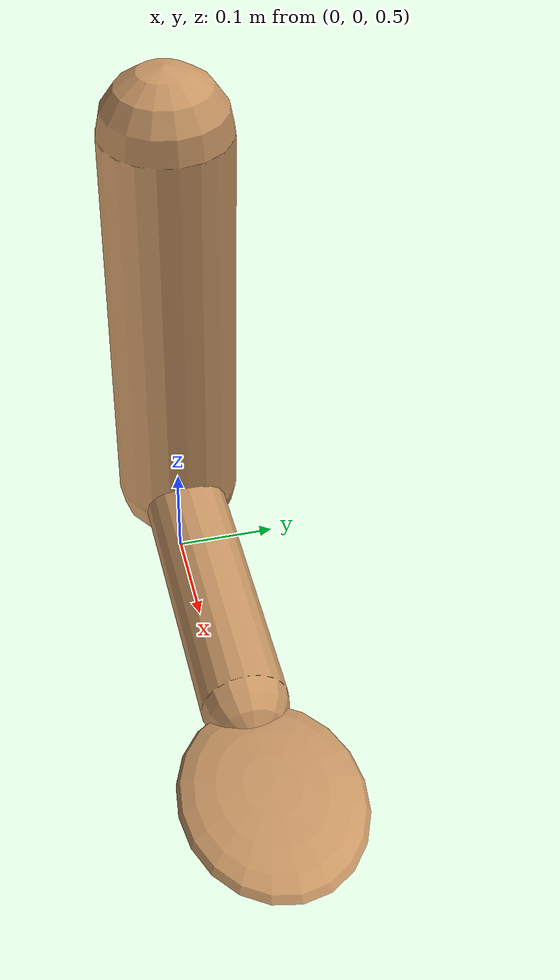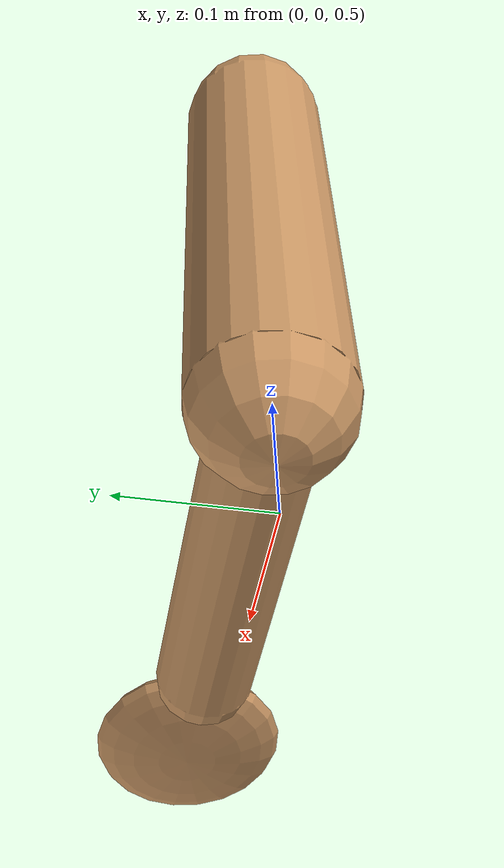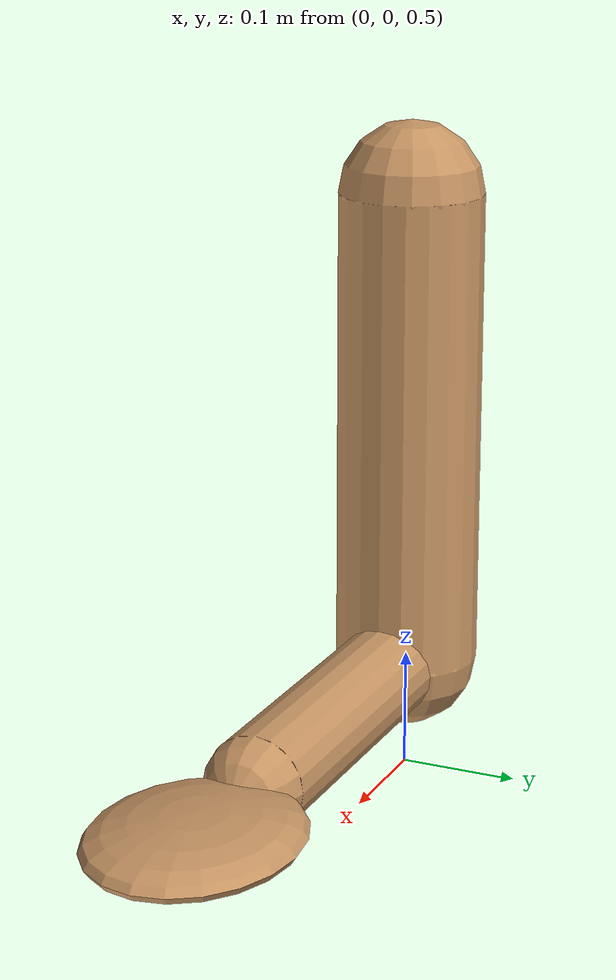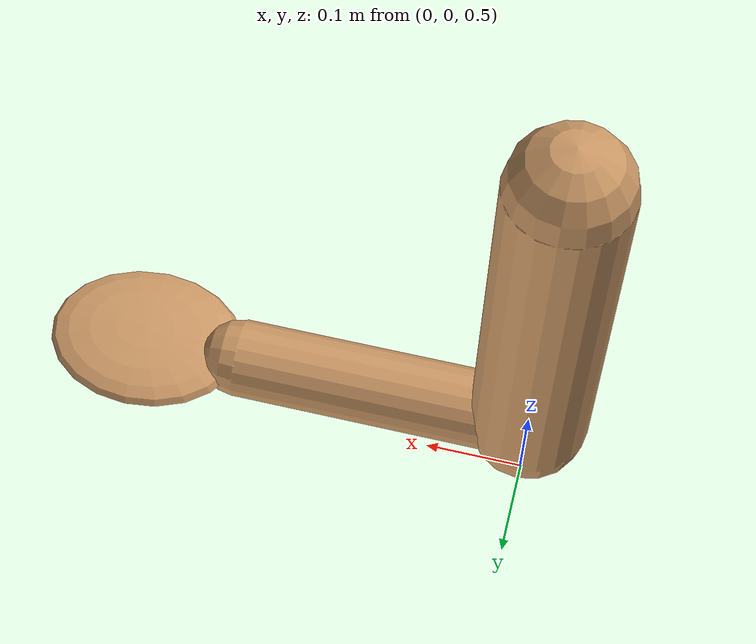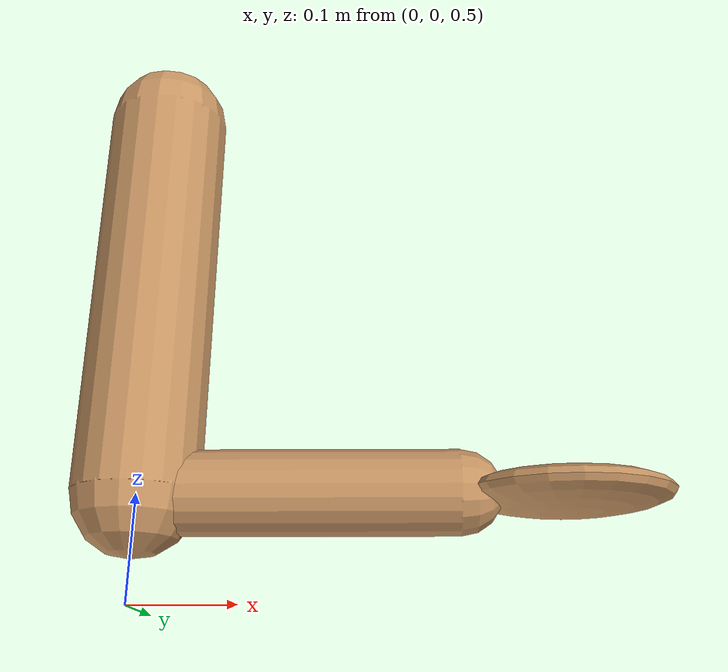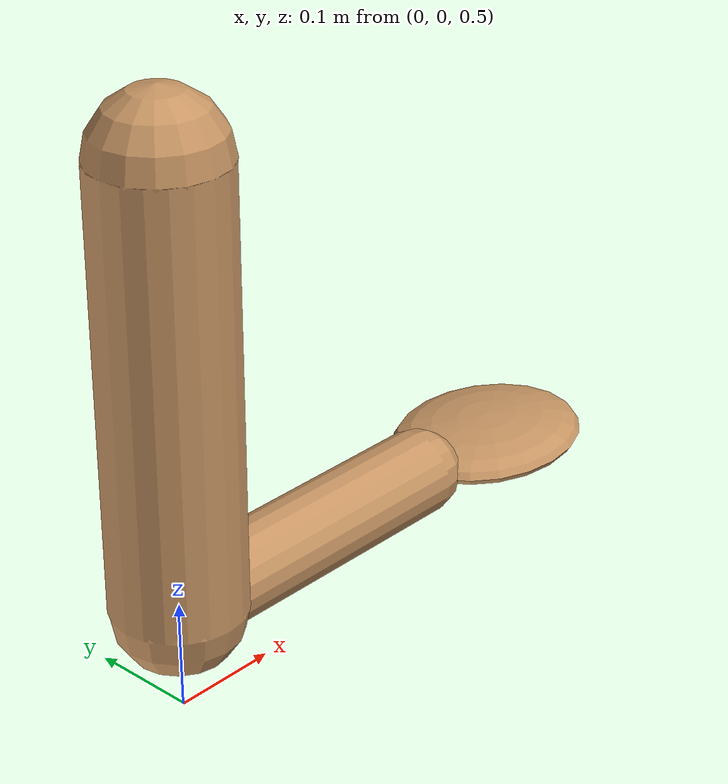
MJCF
<mujoco model="example">
    <compiler coordinate="global"/>
    <default>
        <geom rgba=".8 .6 .4 1"/>
    </default>
    <asset>
        <texture type="skybox" builtin="gradient" rgb1="1 1 1" rgb2=".6 .8 1"
                 width="256" height="256"/>
    </asset>
    <worldbody>
        <light pos="0 1 1" dir="0 -1 -1" diffuse="1 1 1"/>
        <body>
            <geom type="capsule" fromto="0 0 1  0 0 0.6" size="0.06"/>
            <joint type="ball" pos="0 0 1"/>
            <body>
                <geom type="capsule" fromto="0 0 0.6  0.3 0 0.6" size="0.04"/>
                <joint type="hinge" pos="0 0 0.6" axis="0 1 0"/>
                <joint type="hinge" pos="0 0 0.6" axis="1 0 0"/>
                <body>
                    <geom type="ellipsoid" pos="0.4 0 0.6" size="0.1 0.08 0.02"/>
                    <joint type="slide" pos="0 0 0.6" axis="1 0 0" damping="1.25" stiffness="150"/>
                </body>
            </body>
        </body>
    </worldbody>
</mujoco>
